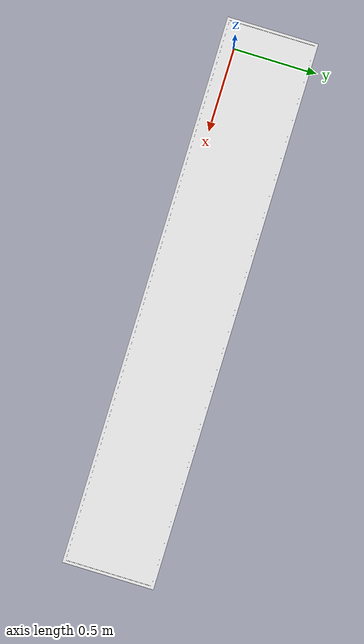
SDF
<?xml version="1.0" ?>
<sdf version="1.6">
  <model name="Table">
  <static>true</static>
  <pose>0 0 0 0 0 0</pose>
    <link name="Table">
      <pose>0 0 0 0 0 0</pose>
      <visual name="Table_visual">
        <geometry><mesh><uri>model://Table/meshes/Table.stl</uri></mesh></geometry>
        <material>
        <script>
          <uri>file://media/materials/scripts/gazebo.material</uri>
          <name>Gazebo/White</name>
        </script>
        </material>
      </visual>
      <collision name="Table_collision">
        <geometry><mesh><uri>model://Table/meshes/Table.stl</uri></mesh></geometry>
      </collision>
    </link>

  </model>
</sdf>
